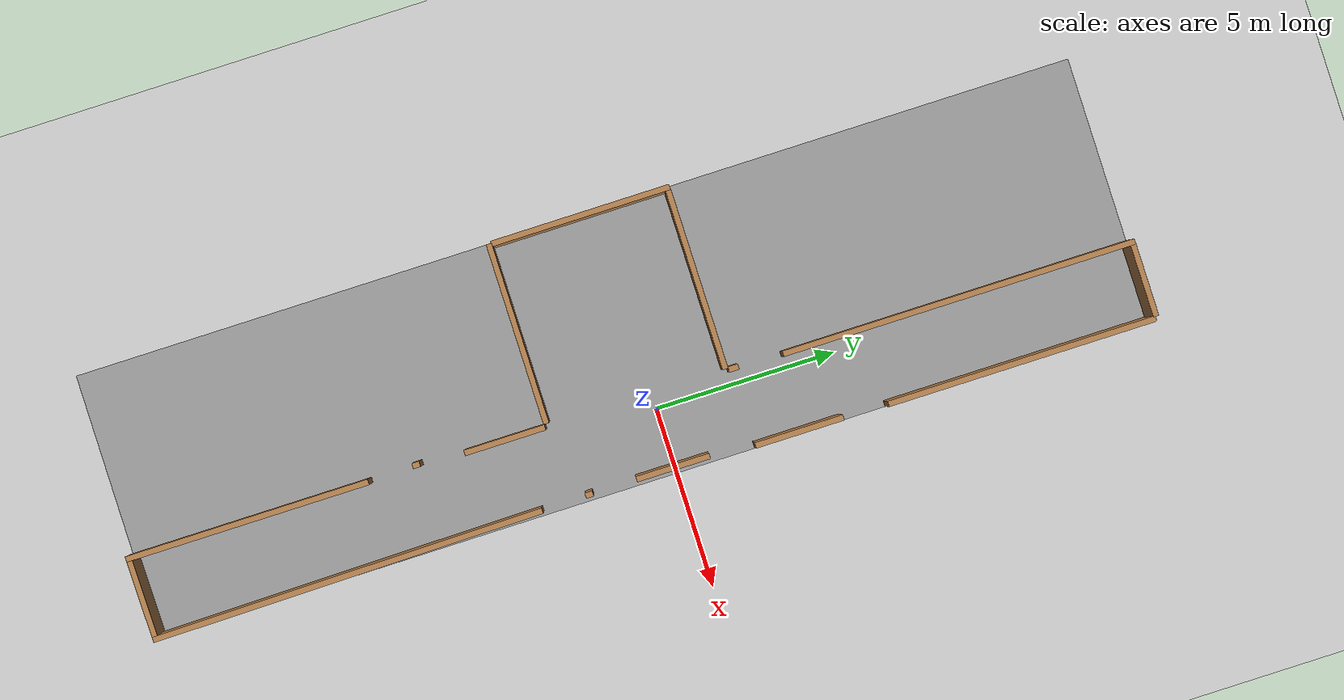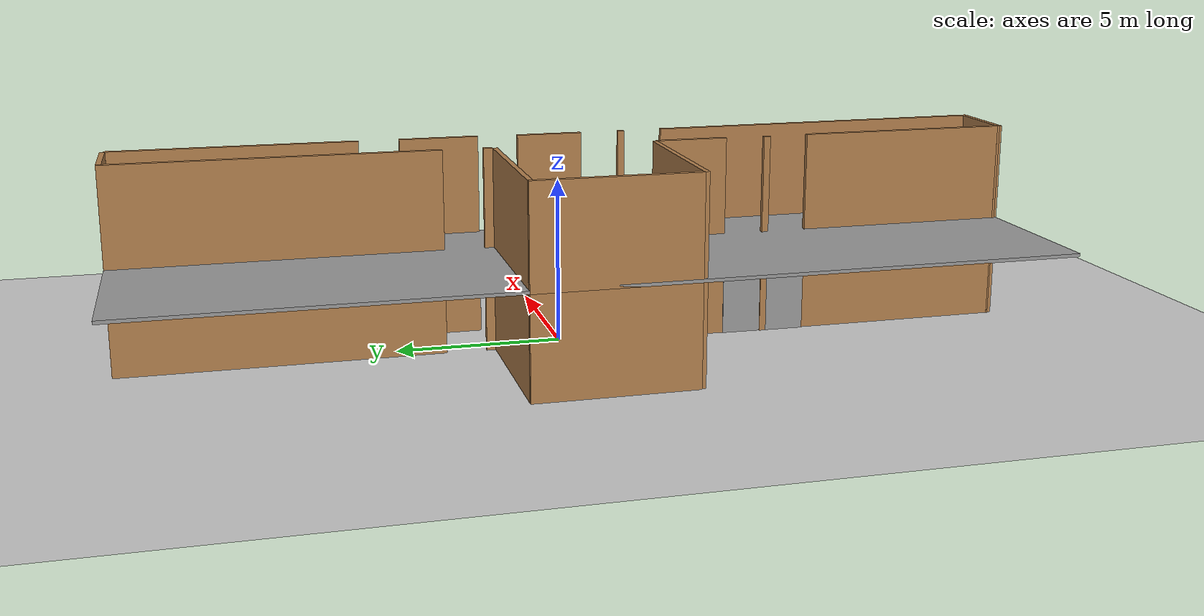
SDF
<sdf version="1.7">
 <world name="default">
  <light name="sun" type="directional">
   <pose>0 0 10 0 -0 0</pose>
   <diffuse>0.8 0.8 0.8 1</diffuse>
   <specular>0.2 0.2 0.2 1</specular>
   <attenuation>
    <range>1000</range>
    <constant>0.9</constant>
    <linear>0.01</linear>
    <quadratic>0.001</quadratic>
   </attenuation>
   <direction>-0.5 0.1 -0.9</direction>
   <spot><inner_angle>0</inner_angle><outer_angle>0</outer_angle><falloff>0</falloff></spot>
  </light>
  <model name="ground_plane">
   <static>1</static>
   <link name="link">
    <collision name="collision">
     <geometry><plane><normal>0 0 1</normal><size>100 100</size></plane></geometry>
     <surface>
      <contact><collide_bitmask>65535</collide_bitmask></contact>
      <friction><ode><mu>100</mu><mu2>50</mu2></ode></friction>
     </surface>
    </collision>
    <visual name="visual">
     <cast_shadows>0</cast_shadows>
     <geometry><plane><normal>0 0 1</normal><size>100 100</size></plane></geometry>
     <material>
      <script><uri>file://media/materials/scripts/gazebo.material</uri><name>Gazebo/Grey</name></script>
     </material>
    </visual>
   </link>
  </model>
  <gravity>0 0 -9.8</gravity>
  <magnetic_field>6e-06 2.3e-05 -4.2e-05</magnetic_field>
  <atmosphere type="adiabatic"/>
  <physics type="ode">
   <max_step_size>0.001</max_step_size>
   <real_time_factor>1</real_time_factor>
   <real_time_update_rate>1000</real_time_update_rate>
  </physics>
  <scene><ambient>0.4 0.4 0.4 1</ambient><background>0.7 0.7 0.7 1</background><shadows>1</shadows></scene>
  <spherical_coordinates>
   <surface_model>EARTH_WGS84</surface_model>
   <latitude_deg>0</latitude_deg>
   <longitude_deg>0</longitude_deg>
   <elevation>0</elevation>
   <heading_deg>0</heading_deg>
  </spherical_coordinates>
  <model name="IIEE_cordor">
   <pose>-1.42912 -0.593339 0 0 -0 0</pose>
   <link name="Door_0">
    <collision name="Door_0_Collision">
     <geometry><box><size>1.2 0.2 2.1</size></box></geometry>
     <pose>0 0 1.05 0 -0 0</pose>
    </collision>
    <visual name="Door_0_Visual">
     <pose>0 0 1.05 0 -0 0</pose>
     <geometry><box><size>1.2 0.2 2.1</size></box></geometry>
     <material>
      <script><uri>file://media/materials/scripts/gazebo.material</uri><name>Gazebo/Grey</name></script>
     </material>
    </visual>
    <pose>0.882697 -6.52424 0 0 -0 1.55966</pose>
   </link>
   <link name="Door_4">
    <collision name="Door_4_Collision">
     <geometry><box><size>1.2 0.2 2.1</size></box></geometry>
     <pose>0 0 1.05 0 -0 0</pose>
    </collision>
    <visual name="Door_4_Visual">
     <pose>0 0 1.05 0 -0 0</pose>
     <geometry><box><size>1.2 0.2 2.1</size></box></geometry>
     <material>
      <script><uri>file://media/materials/scripts/gazebo.material</uri><name>Gazebo/Grey</name></script>
     </material>
    </visual>
    <pose>0.9175 -5.12651 0 0 -0 1.54807</pose>
   </link>
   <link name="Floor_5">
    <collision name="Floor_5_Collision">
     <geometry><box><size>7.27598 27.491 0.1</size></box></geometry>
     <pose>0 0 0.05 0 -0 0</pose>
    </collision>
    <visual name="Floor_5_Visual">
     <pose>0 0 0.05 0 -0 0</pose>
     <geometry><box><size>7.27598 27.491 0.1</size></box></geometry>
     <material>
      <script><uri>file://media/materials/scripts/gazebo.material</uri><name>Gazebo/Grey</name></script>
      <ambient>1 1 1 1</ambient>
     </material>
     <meta><layer>1</layer></meta>
    </visual>
    <pose>-0.46851 -0 3.08 0 -0 0</pose>
   </link>
   <link name="Wall_129">
    <collision name="Wall_129_Collision">
     <geometry><box><size>6.61298 0.15 3.08</size></box></geometry>
     <pose>0 0 1.54 0 -0 0</pose>
    </collision>
    <visual name="Wall_129_Visual">
     <pose>0 0 1.54 0 -0 0</pose>
     <geometry><box><size>6.61298 0.15 3.08</size></box></geometry>
     <material>
      <script><uri>file://media/materials/scripts/gazebo.material</uri><name>Gazebo/Wood</name></script>
      <ambient>1 1 1 1</ambient>
     </material>
     <meta><layer>1</layer></meta>
    </visual>
    <pose>0.887499 -10.438 3.08 0 -0 1.5708</pose>
   </link>
   <link name="Wall_130">
    <collision name="Wall_130_Collision">
     <geometry><box><size>0.2 0.15 3.08</size></box></geometry>
     <pose>0 0 1.54 0 -0 0</pose>
    </collision>
    <visual name="Wall_130_Visual">
     <pose>0 0 1.54 0 -0 0</pose>
     <geometry><box><size>0.2 0.15 3.08</size></box></geometry>
     <material>
      <script><uri>file://media/materials/scripts/gazebo.material</uri><name>Gazebo/Wood</name></script>
      <ambient>1 1 1 1</ambient>
     </material>
     <meta><layer>1</layer></meta>
    </visual>
    <pose>0.8465 -5.81651 3.08 0 -0 1.5708</pose>
   </link>
   <link name="Wall_131">
    <collision name="Wall_131_Collision">
     <geometry><box><size>2.2 0.15 3.08</size></box></geometry>
     <pose>0 0 1.54 0 -0 0</pose>
    </collision>
    <visual name="Wall_131_Visual">
     <pose>0 0 1.54 0 -0 0</pose>
     <geometry><box><size>2.2 0.15 3.08</size></box></geometry>
     <material>
      <script><uri>file://media/materials/scripts/gazebo.material</uri><name>Gazebo/Wood</name></script>
      <ambient>1 1 1 1</ambient>
     </material>
     <meta><layer>1</layer></meta>
    </visual>
    <pose>0.93352 -3.42901 3.08 0 -0 1.5708</pose>
   </link>
   <link name="Wall_132">
    <collision name="Wall_132_Collision">
     <geometry><box><size>4.9 0.15 3.08</size></box></geometry>
     <pose>0 0 1.54 0 -0 0</pose>
    </collision>
    <visual name="Wall_132_Visual">
     <pose>0 0 1.54 0 -0 0</pose>
     <geometry><box><size>4.9 0.15 3.08</size></box></geometry>
     <material>
      <script><uri>file://media/materials/scripts/gazebo.material</uri><name>Gazebo/Wood</name></script>
      <ambient>1 1 1 1</ambient>
     </material>
     <meta><layer>1</layer></meta>
    </visual>
    <pose>-1.6015 -2.26851 3.08 0 -0 3.14159</pose>
   </link>
   <link name="Wall_133">
    <collision name="Wall_133_Collision">
     <geometry><box><size>4.87 0.15 3.08</size></box></geometry>
     <pose>0 0 1.54 0 -0 0</pose>
    </collision>
    <visual name="Wall_133_Visual">
     <pose>0 0 1.54 0 -0 0</pose>
     <geometry><box><size>4.87 0.15 3.08</size></box></geometry>
     <material>
      <script><uri>file://media/materials/scripts/gazebo.material</uri><name>Gazebo/Wood</name></script>
      <ambient>1 1 1 1</ambient>
     </material>
     <meta><layer>1</layer></meta>
    </visual>
    <pose>-4.0315 0.22349 3.08 0 -0 1.5708</pose>
   </link>
   <link name="Wall_134">
    <collision name="Wall_134_Collision">
     <geometry><box><size>4.9 0.15 3.08</size></box></geometry>
     <pose>0 0 1.54 0 -0 0</pose>
    </collision>
    <visual name="Wall_134_Visual">
     <pose>0 0 1.54 0 -0 0</pose>
     <geometry><box><size>4.9 0.15 3.08</size></box></geometry>
     <material>
      <script><uri>file://media/materials/scripts/gazebo.material</uri><name>Gazebo/Wood</name></script>
      <ambient>1 1 1 1</ambient>
     </material>
     <meta><layer>1</layer></meta>
    </visual>
    <pose>-1.5315 2.59549 3.08 0 -0 0</pose>
   </link>
   <link name="Wall_135">
    <collision name="Wall_135_Collision">
     <geometry><box><size>0.27 0.15 3.08</size></box></geometry>
     <pose>0 0 1.54 0 -0 0</pose>
    </collision>
    <visual name="Wall_135_Visual">
     <pose>0 0 1.54 0 -0 0</pose>
     <geometry><box><size>0.27 0.15 3.08</size></box></geometry>
     <material>
      <script><uri>file://media/materials/scripts/gazebo.material</uri><name>Gazebo/Wood</name></script>
      <ambient>1 1 1 1</ambient>
     </material>
     <meta><layer>1</layer></meta>
    </visual>
    <pose>0.9605 2.80549 3.08 0 -0 1.5708</pose>
   </link>
   <link name="Wall_136">
    <collision name="Wall_136_Collision">
     <geometry><box><size>9.6 0.15 3.08</size></box></geometry>
     <pose>0 0 1.54 0 -0 0</pose>
    </collision>
    <visual name="Wall_136_Visual">
     <pose>0 0 1.54 0 -0 0</pose>
     <geometry><box><size>9.6 0.15 3.08</size></box></geometry>
     <material>
      <script><uri>file://media/materials/scripts/gazebo.material</uri><name>Gazebo/Wood</name></script>
      <ambient>1 1 1 1</ambient>
     </material>
     <meta><layer>1</layer></meta>
    </visual>
    <pose>1.0025 8.94149 3.08 0 -0 1.5708</pose>
   </link>
   <link name="Wall_137">
    <collision name="Wall_137_Collision">
     <geometry><box><size>1.97 0.15 3.08</size></box></geometry>
     <pose>0 0 1.54 0 -0 0</pose>
    </collision>
    <visual name="Wall_137_Visual">
     <pose>0 0 1.54 0 -0 0</pose>
     <geometry><box><size>1.97 0.15 3.08</size></box></geometry>
     <material>
      <script><uri>file://media/materials/scripts/gazebo.material</uri><name>Gazebo/Wood</name></script>
      <ambient>1 1 1 1</ambient>
     </material>
     <meta><layer>1</layer></meta>
    </visual>
    <pose>2.0395 13.6705 3.08 0 -0 0</pose>
   </link>
   <link name="Wall_138">
    <collision name="Wall_138_Collision">
     <geometry><box><size>7.3 0.15 3.08</size></box></geometry>
     <pose>0 0 1.54 0 -0 0</pose>
    </collision>
    <visual name="Wall_138_Visual">
     <pose>0 0 1.54 0 -0 0</pose>
     <geometry><box><size>7.3 0.15 3.08</size></box></geometry>
     <material>
      <script><uri>file://media/materials/scripts/gazebo.material</uri><name>Gazebo/Wood</name></script>
      <ambient>1 1 1 1</ambient>
     </material>
     <meta><layer>1</layer></meta>
    </visual>
    <pose>3.0755 9.99949 3.08 0 -0 -1.5708</pose>
   </link>
   <link name="Wall_139">
    <collision name="Wall_139_Collision">
     <geometry><box><size>2.4 0.15 3.08</size></box></geometry>
     <pose>0 0 1.54 0 -0 0</pose>
    </collision>
    <visual name="Wall_139_Visual">
     <pose>0 0 1.54 0 -0 0</pose>
     <geometry><box><size>2.4 0.15 3.08</size></box></geometry>
     <material>
      <script><uri>file://media/materials/scripts/gazebo.material</uri><name>Gazebo/Wood</name></script>
      <ambient>1 1 1 1</ambient>
     </material>
     <meta><layer>1</layer></meta>
    </visual>
    <pose>3.0505 3.934 3.08 0 -0 -1.5708</pose>
   </link>
   <link name="Wall_140">
    <collision name="Wall_140_Collision">
     <geometry><box><size>2 0.15 3.08</size></box></geometry>
     <pose>0 0 1.54 0 -0 0</pose>
    </collision>
    <visual name="Wall_140_Visual">
     <pose>0 0 1.54 0 -0 0</pose>
     <geometry><box><size>2 0.15 3.08</size></box></geometry>
     <material>
      <script><uri>file://media/materials/scripts/gazebo.material</uri><name>Gazebo/Wood</name></script>
      <ambient>1 1 1 1</ambient>
     </material>
     <meta><layer>1</layer></meta>
    </visual>
    <pose>2.9455 0.520489 3.08 0 -0 -1.5708</pose>
   </link>
   <link name="Wall_141">
    <collision name="Wall_141_Collision">
     <geometry><box><size>0.20001 0.15 3.08</size></box></geometry>
     <pose>0 0 1.54 0 -0 0</pose>
    </collision>
    <visual name="Wall_141_Visual">
     <pose>0 0 1.54 0 -0 0</pose>
     <geometry><box><size>0.20001 0.15 3.08</size></box></geometry>
     <material>
      <script><uri>file://media/materials/scripts/gazebo.material</uri><name>Gazebo/Wood</name></script>
      <ambient>1 1 1 1</ambient>
     </material>
     <meta><layer>1</layer></meta>
    </visual>
    <pose>2.95 -1.76851 3.08 0 -0 -1.5508</pose>
   </link>
   <link name="Wall_142">
    <collision name="Wall_142_Collision">
     <geometry><box><size>10.6597 0.15 3.08</size></box></geometry>
     <pose>0 0 1.54 0 -0 0</pose>
    </collision>
    <visual name="Wall_142_Visual">
     <pose>0 0 1.54 0 -0 0</pose>
     <geometry><box><size>10.6597 0.15 3.08</size></box></geometry>
     <material>
      <script><uri>file://media/materials/scripts/gazebo.material</uri><name>Gazebo/Wood</name></script>
      <ambient>1 1 1 1</ambient>
     </material>
     <meta><layer>1</layer></meta>
    </visual>
    <pose>3.0345 -8.38601 3.08 0 -0 -1.55957</pose>
   </link>
   <link name="Wall_143">
    <collision name="Wall_143_Collision">
     <geometry><box><size>2.35619 0.15 3.08</size></box></geometry>
     <pose>0 0 1.54 0 -0 0</pose>
    </collision>
    <visual name="Wall_143_Visual">
     <pose>0 0 1.54 0 -0 0</pose>
     <geometry><box><size>2.35619 0.15 3.08</size></box></geometry>
     <material>
      <script><uri>file://media/materials/scripts/gazebo.material</uri><name>Gazebo/Wood</name></script>
      <ambient>1 1 1 1</ambient>
     </material>
     <meta><layer>1</layer></meta>
    </visual>
    <pose>1.9905 -13.655 3.08 0 -0 0.013145</pose>
   </link>
   <link name="Wall_16">
    <collision name="Wall_16_Collision">
     <geometry><box><size>4.9 0.15 3.08</size></box></geometry>
     <pose>0 0 1.54 0 -0 0</pose>
    </collision>
    <visual name="Wall_16_Visual">
     <pose>0 0 1.54 0 -0 0</pose>
     <geometry><box><size>4.9 0.15 3.08</size></box></geometry>
     <material>
      <script><uri>file://media/materials/scripts/gazebo.material</uri><name>Gazebo/Wood</name></script>
      <ambient>0.760784 0.662745 0.627451 1</ambient>
     </material>
     <meta><layer>0</layer></meta>
    </visual>
    <pose>-1.6015 -2.26851 0 0 -0 3.14159</pose>
   </link>
   <link name="Wall_2">
    <collision name="Wall_2_Collision">
     <geometry><box><size>6.61298 0.15 3.08</size></box></geometry>
     <pose>0 0 1.54 0 -0 0</pose>
    </collision>
    <visual name="Wall_2_Visual">
     <pose>0 0 1.54 0 -0 0</pose>
     <geometry><box><size>6.61298 0.15 3.08</size></box></geometry>
     <material>
      <script><uri>file://media/materials/scripts/gazebo.material</uri><name>Gazebo/Wood</name></script>
      <ambient>0.760784 0.662745 0.627451 1</ambient>
     </material>
     <meta><layer>0</layer></meta>
    </visual>
    <pose>0.887499 -10.438 0 0 -0 1.5708</pose>
   </link>
   <link name="Wall_38">
    <collision name="Wall_38_Collision">
     <geometry><box><size>4.87 0.15 3.08</size></box></geometry>
     <pose>0 0 1.54 0 -0 0</pose>
    </collision>
    <visual name="Wall_38_Visual">
     <pose>0 0 1.54 0 -0 0</pose>
     <geometry><box><size>4.87 0.15 3.08</size></box></geometry>
     <material>
      <script><uri>file://media/materials/scripts/gazebo.material</uri><name>Gazebo/Wood</name></script>
      <ambient>0.760784 0.662745 0.627451 1</ambient>
     </material>
     <meta><layer>0</layer></meta>
    </visual>
    <pose>-4.0315 0.22349 0 0 -0 1.5708</pose>
   </link>
   <link name="Wall_41">
    <collision name="Wall_41_Collision">
     <geometry><box><size>4.9 0.15 3.08</size></box></geometry>
     <pose>0 0 1.54 0 -0 0</pose>
    </collision>
    <visual name="Wall_41_Visual">
     <pose>0 0 1.54 0 -0 0</pose>
     <geometry><box><size>4.9 0.15 3.08</size></box></geometry>
     <material>
      <script><uri>file://media/materials/scripts/gazebo.material</uri><name>Gazebo/Wood</name></script>
      <ambient>0.760784 0.662745 0.627451 1</ambient>
     </material>
     <meta><layer>0</layer></meta>
    </visual>
    <pose>-1.5315 2.59549 0 0 -0 0</pose>
   </link>
   <link name="Wall_45">
    <pose>0.9605 2.80549 0 0 -0 1.5708</pose>
    <visual name="Wall_45_Visual_0">
     <pose>-0.001 0 1.54 0 -0 0</pose>
     <geometry><box><size>0.268 0.15 3.08</size></box></geometry>
     <material>
      <script><uri>file://media/materials/scripts/gazebo.material</uri><name>Gazebo/Wood</name></script>
      <ambient>0.760784 0.662745 0.627451 1</ambient>
     </material>
     <meta><layer>0</layer></meta>
    </visual>
    <collision name="Wall_45_Collision_0">
     <geometry><box><size>0.268 0.15 3.08</size></box></geometry>
     <pose>-0.001 0 1.54 0 -0 0</pose>
    </collision>
    <visual name="Wall_45_Visual_1">
     <pose>0.134 0 2.59 0 -0 0</pose>
     <geometry><box><size>0.002 0.15 0.98</size></box></geometry>
     <material>
      <script><uri>file://media/materials/scripts/gazebo.material</uri><name>Gazebo/Wood</name></script>
      <ambient>0.760784 0.662745 0.627451 1</ambient>
     </material>
     <meta><layer>0</layer></meta>
    </visual>
    <collision name="Wall_45_Collision_1">
     <geometry><box><size>0.002 0.15 0.98</size></box></geometry>
     <pose>0.134 0 2.59 0 -0 0</pose>
    </collision>
   </link>
   <link name="Wall_47">
    <collision name="Wall_47_Collision">
     <geometry><box><size>9.6 0.15 3.08</size></box></geometry>
     <pose>0 0 1.54 0 -0 0</pose>
    </collision>
    <visual name="Wall_47_Visual">
     <pose>0 0 1.54 0 -0 0</pose>
     <geometry><box><size>9.6 0.15 3.08</size></box></geometry>
     <material>
      <script><uri>file://media/materials/scripts/gazebo.material</uri><name>Gazebo/Wood</name></script>
      <ambient>0.760784 0.662745 0.627451 1</ambient>
     </material>
     <meta><layer>0</layer></meta>
    </visual>
    <pose>1.0025 8.94149 0 0 -0 1.5708</pose>
   </link>
   <link name="Wall_49">
    <pose>2.0395 13.6705 0 0 -0 0</pose>
    <visual name="Wall_49_Visual_0">
     <pose>-0.846767 0 1.54 0 -0 0</pose>
     <geometry><box><size>0.276465 0.15 3.08</size></box></geometry>
     <material>
      <script><uri>file://media/materials/scripts/gazebo.material</uri><name>Gazebo/Wood</name></script>
      <ambient>0.760784 0.662745 0.627451 1</ambient>
     </material>
     <meta><layer>0</layer></meta>
    </visual>
    <collision name="Wall_49_Collision_0">
     <geometry><box><size>0.276465 0.15 3.08</size></box></geometry>
     <pose>-0.846767 0 1.54 0 -0 0</pose>
    </collision>
    <visual name="Wall_49_Visual_1">
     <pose>0.788233 0 1.54 0 -0 0</pose>
     <geometry><box><size>0.393535 0.15 3.08</size></box></geometry>
     <material>
      <script><uri>file://media/materials/scripts/gazebo.material</uri><name>Gazebo/Wood</name></script>
      <ambient>0.760784 0.662745 0.627451 1</ambient>
     </material>
     <meta><layer>0</layer></meta>
    </visual>
    <collision name="Wall_49_Collision_1">
     <geometry><box><size>0.393535 0.15 3.08</size></box></geometry>
     <pose>0.788233 0 1.54 0 -0 0</pose>
    </collision>
    <visual name="Wall_49_Visual_2">
     <pose>-0.058535 0 2.59 0 -0 0</pose>
     <geometry><box><size>1.3 0.15 0.98</size></box></geometry>
     <material>
      <script><uri>file://media/materials/scripts/gazebo.material</uri><name>Gazebo/Wood</name></script>
      <ambient>0.760784 0.662745 0.627451 1</ambient>
     </material>
     <meta><layer>0</layer></meta>
    </visual>
    <collision name="Wall_49_Collision_2">
     <geometry><box><size>1.3 0.15 0.98</size></box></geometry>
     <pose>-0.058535 0 2.59 0 -0 0</pose>
    </collision>
   </link>
   <link name="Wall_5">
    <collision name="Wall_5_Collision">
     <geometry><box><size>0.2 0.15 3.08</size></box></geometry>
     <pose>0 0 1.54 0 -0 0</pose>
    </collision>
    <visual name="Wall_5_Visual">
     <pose>0 0 1.54 0 -0 0</pose>
     <geometry><box><size>0.2 0.15 3.08</size></box></geometry>
     <material>
      <script><uri>file://media/materials/scripts/gazebo.material</uri><name>Gazebo/Wood</name></script>
      <ambient>0.760784 0.662745 0.627451 1</ambient>
     </material>
     <meta><layer>0</layer></meta>
    </visual>
    <pose>0.8465 -5.81651 0 0 -0 1.5708</pose>
   </link>
   <link name="Wall_54">
    <pose>3.0755 9.99949 0 0 -0 -1.5708</pose>
    <visual name="Wall_54_Visual_0">
     <pose>-0.0005 0 1.54 0 -0 0</pose>
     <geometry><box><size>7.299 0.15 3.08</size></box></geometry>
     <material>
      <script><uri>file://media/materials/scripts/gazebo.material</uri><name>Gazebo/Wood</name></script>
      <ambient>0.760784 0.662745 0.627451 1</ambient>
     </material>
     <meta><layer>0</layer></meta>
    </visual>
    <collision name="Wall_54_Collision_0">
     <geometry><box><size>7.299 0.15 3.08</size></box></geometry>
     <pose>-0.0005 0 1.54 0 -0 0</pose>
    </collision>
    <visual name="Wall_54_Visual_1">
     <pose>3.6495 0 2.59 0 -0 0</pose>
     <geometry><box><size>0.000999 0.15 0.98</size></box></geometry>
     <material>
      <script><uri>file://media/materials/scripts/gazebo.material</uri><name>Gazebo/Wood</name></script>
      <ambient>0.760784 0.662745 0.627451 1</ambient>
     </material>
     <meta><layer>0</layer></meta>
    </visual>
    <collision name="Wall_54_Collision_1">
     <geometry><box><size>0.000999 0.15 0.98</size></box></geometry>
     <pose>3.6495 0 2.59 0 -0 0</pose>
    </collision>
   </link>
   <link name="Wall_56">
    <pose>3.0505 3.934 0 0 -0 -1.5708</pose>
    <visual name="Wall_56_Visual_0">
     <pose>0 0 1.54 0 -0 0</pose>
     <geometry><box><size>2.4 0.15 3.08</size></box></geometry>
     <material>
      <script><uri>file://media/materials/scripts/gazebo.material</uri><name>Gazebo/Wood</name></script>
      <ambient>0.760784 0.662745 0.627451 1</ambient>
     </material>
     <meta><layer>0</layer></meta>
    </visual>
    <collision name="Wall_56_Collision_0">
     <geometry><box><size>2.4 0.15 3.08</size></box></geometry>
     <pose>0 0 1.54 0 -0 0</pose>
    </collision>
   </link>
   <link name="Wall_59">
    <pose>2.9455 0.52049 0 0 -0 -1.5708</pose>
    <visual name="Wall_59_Visual_0">
     <pose>-0.004 0 1.54 0 -0 0</pose>
     <geometry><box><size>1.992 0.15 3.08</size></box></geometry>
     <material>
      <script><uri>file://media/materials/scripts/gazebo.material</uri><name>Gazebo/Wood</name></script>
      <ambient>0.760784 0.662745 0.627451 1</ambient>
     </material>
     <meta><layer>0</layer></meta>
    </visual>
    <collision name="Wall_59_Collision_0">
     <geometry><box><size>1.992 0.15 3.08</size></box></geometry>
     <pose>-0.004 0 1.54 0 -0 0</pose>
    </collision>
    <visual name="Wall_59_Visual_1">
     <pose>0.996 0 2.59 0 -0 0</pose>
     <geometry><box><size>0.008 0.15 0.98</size></box></geometry>
     <material>
      <script><uri>file://media/materials/scripts/gazebo.material</uri><name>Gazebo/Wood</name></script>
      <ambient>0.760784 0.662745 0.627451 1</ambient>
     </material>
     <meta><layer>0</layer></meta>
    </visual>
    <collision name="Wall_59_Collision_1">
     <geometry><box><size>0.008 0.15 0.98</size></box></geometry>
     <pose>0.996 0 2.59 0 -0 0</pose>
    </collision>
   </link>
   <link name="Wall_61">
    <pose>2.95 -1.76851 0 0 -0 -1.5508</pose>
    <visual name="Wall_61_Visual_0">
     <pose>-0.008304 0 1.54 0 -0 0</pose>
     <geometry><box><size>0.183393 0.15 3.08</size></box></geometry>
     <material>
      <script><uri>file://media/materials/scripts/gazebo.material</uri><name>Gazebo/Wood</name></script>
      <ambient>0.760784 0.662745 0.627451 1</ambient>
     </material>
     <meta><layer>0</layer></meta>
    </visual>
    <collision name="Wall_61_Collision_0">
     <geometry><box><size>0.183393 0.15 3.08</size></box></geometry>
     <pose>-0.008304 0 1.54 0 -0 0</pose>
    </collision>
    <visual name="Wall_61_Visual_1">
     <pose>0.091696 0 2.59 0 -0 0</pose>
     <geometry><box><size>0.016607 0.15 0.98</size></box></geometry>
     <material>
      <script><uri>file://media/materials/scripts/gazebo.material</uri><name>Gazebo/Wood</name></script>
      <ambient>0.760784 0.662745 0.627451 1</ambient>
     </material>
     <meta><layer>0</layer></meta>
    </visual>
    <collision name="Wall_61_Collision_1">
     <geometry><box><size>0.016607 0.15 0.98</size></box></geometry>
     <pose>0.091696 0 2.59 0 -0 0</pose>
    </collision>
   </link>
   <link name="Wall_64">
    <collision name="Wall_64_Collision">
     <geometry><box><size>10.66 0.15 3.08</size></box></geometry>
     <pose>0 0 1.54 0 -0 0</pose>
    </collision>
    <visual name="Wall_64_Visual">
     <pose>0 0 1.54 0 -0 0</pose>
     <geometry><box><size>10.66 0.15 3.08</size></box></geometry>
     <material>
      <script><uri>file://media/materials/scripts/gazebo.material</uri><name>Gazebo/Wood</name></script>
      <ambient>0.760784 0.662745 0.627451 1</ambient>
     </material>
     <meta><layer>0</layer></meta>
    </visual>
    <pose>3.0345 -8.38601 0 0 -0 -1.55957</pose>
   </link>
   <link name="Wall_67">
    <pose>1.9905 -13.655 0 0 -0 0.013145</pose>
    <visual name="Wall_67_Visual_0">
     <pose>-0.903736 0 1.54 0 -0 0</pose>
     <geometry><box><size>0.548058 0.15 3.08</size></box></geometry>
     <material>
      <script><uri>file://media/materials/scripts/gazebo.material</uri><name>Gazebo/Wood</name></script>
      <ambient>0.760784 0.662745 0.627451 1</ambient>
     </material>
     <meta><layer>0</layer></meta>
    </visual>
    <collision name="Wall_67_Collision_0">
     <geometry><box><size>0.548058 0.15 3.08</size></box></geometry>
     <pose>-0.903736 0 1.54 0 -0 0</pose>
    </collision>
    <visual name="Wall_67_Visual_1">
     <pose>0.924029 0 1.54 0 -0 0</pose>
     <geometry><box><size>0.507472 0.15 3.08</size></box></geometry>
     <material>
      <script><uri>file://media/materials/scripts/gazebo.material</uri><name>Gazebo/Wood</name></script>
      <ambient>0.760784 0.662745 0.627451 1</ambient>
     </material>
     <meta><layer>0</layer></meta>
    </visual>
    <collision name="Wall_67_Collision_1">
     <geometry><box><size>0.507472 0.15 3.08</size></box></geometry>
     <pose>0.924029 0 1.54 0 -0 0</pose>
    </collision>
    <visual name="Wall_67_Visual_2">
     <pose>0.020293 0 2.59 0 -0 0</pose>
     <geometry><box><size>1.3 0.15 0.98</size></box></geometry>
     <material>
      <script><uri>file://media/materials/scripts/gazebo.material</uri><name>Gazebo/Wood</name></script>
      <ambient>0.760784 0.662745 0.627451 1</ambient>
     </material>
     <meta><layer>0</layer></meta>
    </visual>
    <collision name="Wall_67_Collision_2">
     <geometry><box><size>1.3 0.15 0.98</size></box></geometry>
     <pose>0.020293 0 2.59 0 -0 0</pose>
    </collision>
   </link>
   <link name="Wall_8">
    <collision name="Wall_8_Collision">
     <geometry><box><size>2.2 0.15 3.08</size></box></geometry>
     <pose>0 0 1.54 0 -0 0</pose>
    </collision>
    <visual name="Wall_8_Visual">
     <pose>0 0 1.54 0 -0 0</pose>
     <geometry><box><size>2.2 0.15 3.08</size></box></geometry>
     <material>
      <script><uri>file://media/materials/scripts/gazebo.material</uri><name>Gazebo/Wood</name></script>
      <ambient>0.760784 0.662745 0.627451 1</ambient>
     </material>
     <meta><layer>0</layer></meta>
    </visual>
    <pose>0.93352 -3.42901 0 0 -0 1.5708</pose>
   </link>
   <static>1</static>
  </model>
 </world>
</sdf>
